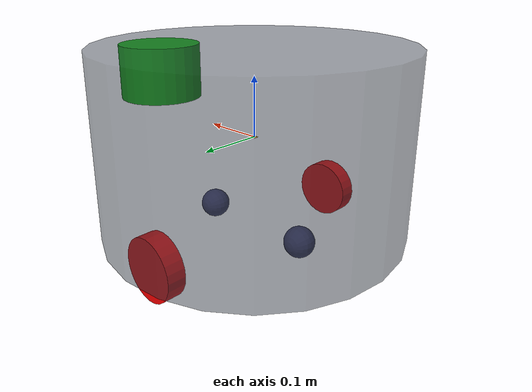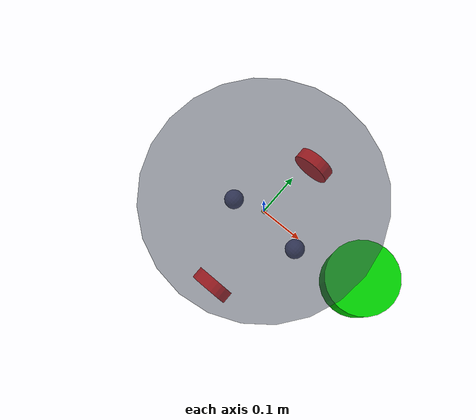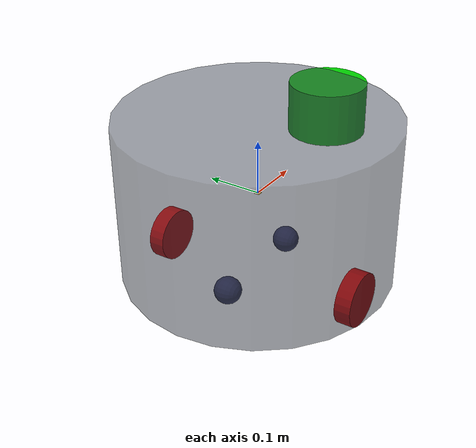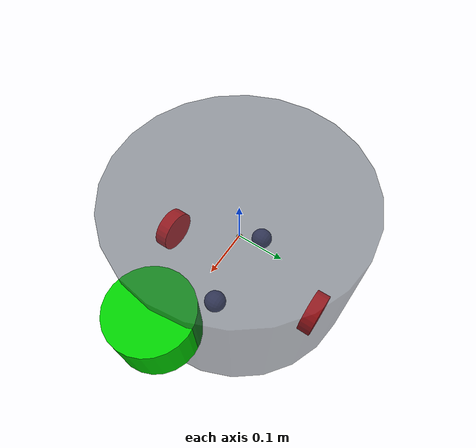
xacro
<?xml version="1.0" ?>

<robot name="my_rb1_robot" xmlns:xacro="http://www.ros.org/wiki/xacro">

    <!-- Parameters -->
    <xacro:property name="base_mass" value="22" />
    <xacro:property name="pi" value="3.1415926535897931"/>

    <xacro:include filename="$(find my_rb1_description)/urdf/my_rb1_robot.urdf"/>

</robot>

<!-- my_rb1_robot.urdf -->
<robot name="my_rb1_robot" xmlns:xacro="http://www.ros.org/wiki/xacro">

    <!-- Link - link_footprint-->
    <link name="link_footprint">
      <visual>
            <origin rpy="0 0 0" xyz="0 0 0" />
            <geometry>
            <box size="0.01 0.01 0"/>
            </geometry>
        </visual>
        </link>

    <!-- Joint - joint_base_footprint-->
    <joint name="joint_base_footprint" type="planar">
    <origin xyz="0 0 0" rpy="0 0 0"/>
    <parent link="link_footprint"/>
    <child link="base_link"/>
    </joint>

    <!-- Link - base_link -->
    <link name="base_link">
        <inertial>
            <mass value="${base_mass}" />
            <origin xyz="0 0 0.3" rpy="0 0 0" />
            <inertia ixx="0.4625" ixy="0" ixz="0" iyy="0.4625" iyz="0" izz="0.625" />
        </inertial>

        <collision>
            <geometry>
                <cylinder length="0.3" radius="0.25"/>
            </geometry>
        </collision>

        <visual>
            <geometry>
                <cylinder length="0.3" radius="0.25"/>
            </geometry>
            <material name="Blue">
                <color rgba="0.203125 0.23828125 0.28515625 0.5" />
            </material>
        </visual>
    </link>

                    <!-- joint base / Front Caster -->
    <joint name="joint_base_front_caster" type="fixed">
        <origin rpy="0 0 0" xyz="0.1 0.0 -0.15" />
        <child link="front_caster" />
        <parent link="base_link" />
        <axis rpy="0 0 0" xyz="1 0 0" />
        <limit effort="10000" velocity="1000" />
        <joint_properties damping="0" friction="0" />
    </joint>
                    <!-- Link Front Caster -->
    <link name="front_caster">
        <inertial>
            <mass value="1" />
            <origin xyz="0 0 0" rpy="0 0 0" />
            <inertia ixx="0.000625" ixy="0" ixz="0" iyy="0.0004625" iyz="0" izz="0.0004625"/>
        </inertial>
        <collision>
            <origin rpy="${pi/2} 0 0" xyz="0 0 0" />
            <geometry>
                <sphere radius="0.025"/>
            </geometry>
        </collision>
        <visual>
            <origin rpy="${pi/2} 0 0" xyz="0 0 0" />
            <geometry>
                 <sphere radius="0.025"/>
            </geometry>
            <material name="Blue">
                <color rgba="0.2 0.2 0.4 1" />
            </material>
        </visual>
    </link>

                    <!-- joint base / Rear Caster -->
    <joint name="joint_base_rear_caster" type="fixed">
        <origin rpy="0 0 0" xyz="-0.1 0.0 -0.15" />
        <child link="rear_caster" />
        <parent link="base_link" />
        <axis rpy="0 0 0" xyz="1 0 0" />
        <limit effort="10000" velocity="1000" />
        <joint_properties damping="0" friction="0" />
    </joint>
                    <!-- Link Rear Caster -->
    <link name="rear_caster">
        <inertial>
            <mass value="1" />
            <origin xyz="0 0 0" rpy="0 0 0" />
            <inertia ixx="0.000625" ixy="0" ixz="0" iyy="0.0004625" iyz="0" izz="0.0004625"/>
        </inertial>
        <collision>
            <origin rpy="${pi/2} 0 0" xyz="0 0 0" />
            <geometry>
                <sphere radius="0.025"/>
            </geometry>
        </collision>
        <visual>
            <origin rpy="${pi/2} 0 0" xyz="0 0 0" />
            <geometry>
                 <sphere radius="0.025"/>
            </geometry>
            <material name="Blue">
                <color rgba="0.2 0.2 0.4 1" />
            </material>
        </visual>
    </link>

    <!-- Joint - base / left wheel -->
    <joint name="joint_base_left_wheel" type="continuous">
        <origin rpy="0 0 0" xyz="0 0.2 -0.15" />
        <child link="left_wheel" />
        <parent link="base_link" />
        <axis rpy="0 0 0" xyz="0 1 0" />
        <limit effort="10000" velocity="1000" />
        <joint_properties damping="1.0" friction="1.0" />
    </joint>
    <!-- Link - left wheel -->
    <link name="left_wheel">
        <inertial>
            <mass value="1" />
            <origin xyz="0 0 0" rpy="0 0 0" />
            <inertia ixx="0.000625" ixy="0" ixz="0" iyy="0.0004625" iyz="0" izz="0.0004625"/>
        </inertial>

        <!-- Tires -->
        <collision>
            <origin rpy="${pi/2} 0 0" xyz="0 0 0" />
            <geometry>
                <cylinder length="0.03" radius="0.05"/>
            </geometry>
        </collision>
        <visual>
            <origin rpy="${pi/2} 0 0" xyz="0 0 0" />
            <geometry>
                <cylinder length="0.03" radius="0.05"/>
            </geometry>
            <material name="Red">
                <color rgba="1 0 0 1" />
            </material>
        </visual>
     </link>

    <!-- Joint - base / right wheel -->
    <joint name="joint_base_right_wheel" type="continuous">
        <origin rpy="0 0 0" xyz="0 -0.2 -0.15" />
        <child link="right_wheel" />
        <parent link="base_link" />
        <axis rpy="0 0 0" xyz="0 1 0" />
        <limit effort="10000" velocity="1000" />
        <joint_properties damping="1.0" friction="1.0" />
    </joint>
    <!-- Link - right wheel -->
    <link name="right_wheel">
        <inertial>
            <mass value="1" />
            <origin xyz="0 0 0" rpy="0 0 0" />
            <inertia ixx="0.000625" ixy="0" ixz="0" iyy="0.0004625" iyz="0" izz="0.0004625"/>
        </inertial>

        <!-- Tires -->
        <collision>
            <origin rpy="${pi/2} 0 0" xyz="0 0 0" />
            <geometry>
                <cylinder length="0.03" radius="0.05"/>
            </geometry>
        </collision>
        <visual>
            <origin rpy="${pi/2} 0 0" xyz="0 0 0" />
            <geometry>
                <cylinder length="0.03" radius="0.05"/>
            </geometry>
            <material name="Red">
                <color rgba="1 0 0 1" />
            </material>
        </visual>
    </link>

    <!-- Laser scan -->
    <joint name="joint_front_laser" type="fixed">
        <origin rpy="${pi} 0 0" xyz="0.25 0 0.075" />
        <child link="front_laser" />
        <parent link="base_link" />
        <joint_properties damping="0" friction="0" />
    </joint>
    <link name="front_laser">
        <inertial>
            <origin xyz="0 0 0" rpy="0 0 0" />
            <mass value="1" />
            <inertia ixx="0.000252666666667" ixy="0" ixz="0" iyy="0.000252666666667" iyz="0" izz="0.0005"/>
        </inertial>
        <visual>
            <origin xyz="0 0 0" rpy="0 0 0" />
            <geometry>
                <cylinder radius="0.075" length="0.10"/>
            </geometry>
            <material name="Green">
                <color rgba="0.0 0.8 0.0 1.0" />
            </material>
        </visual>
        <collision>
            <origin xyz="0 0 0" rpy="0 0 0"/>
            <geometry>
                <cylinder radius="0.075" length="0.10"/>
            </geometry>
        </collision>
    </link>
</robot>
